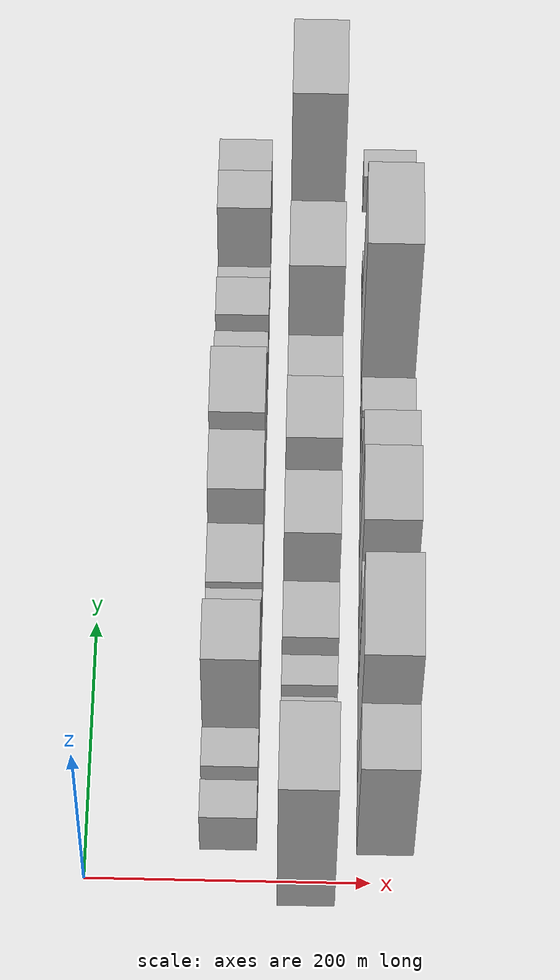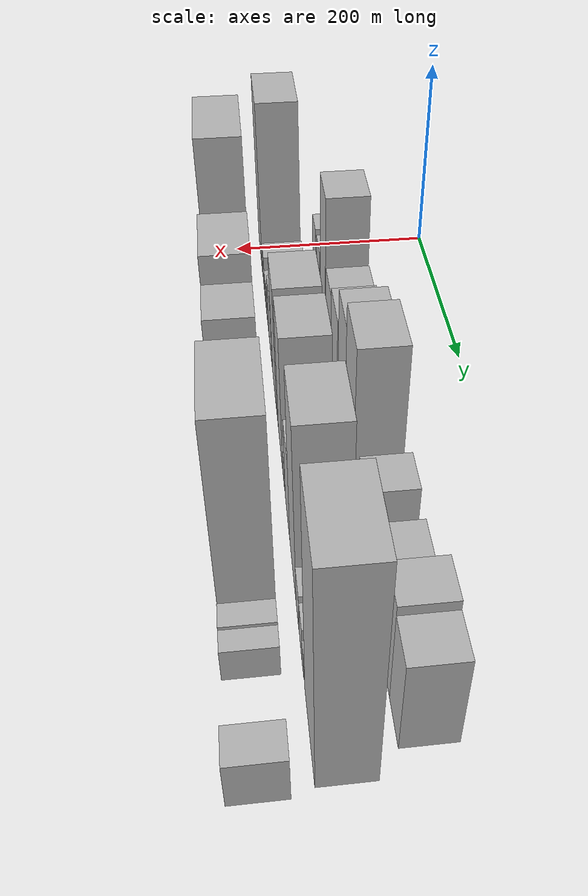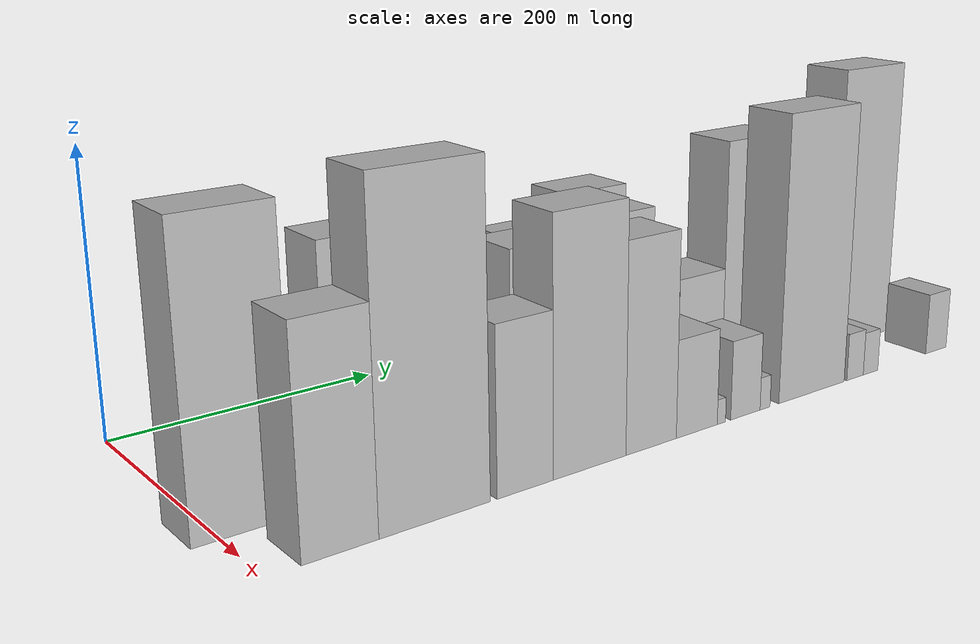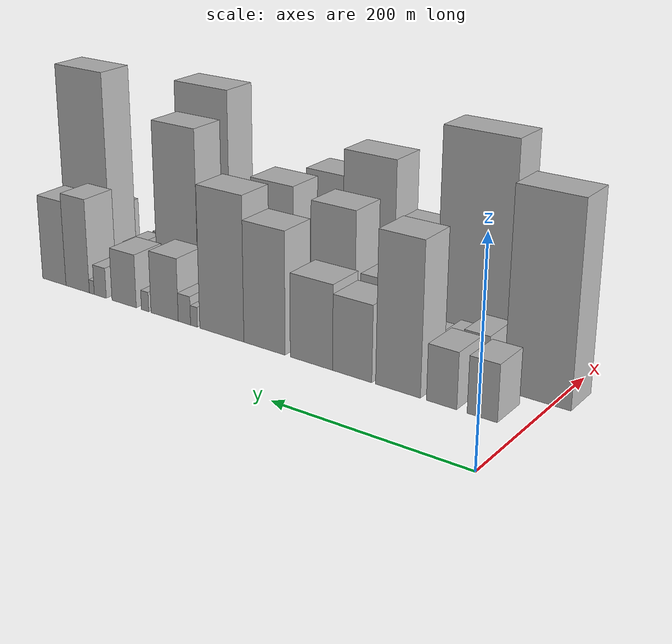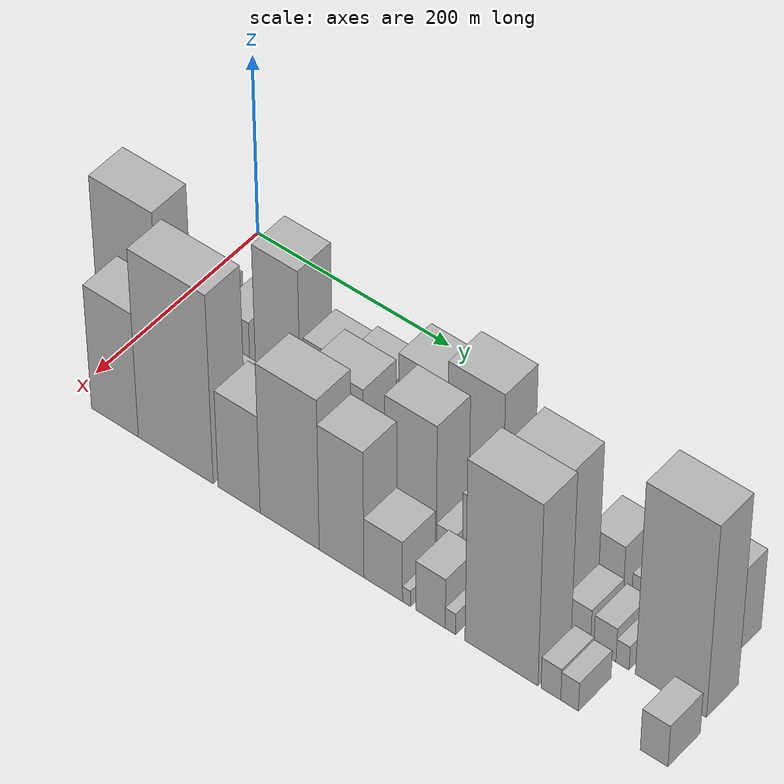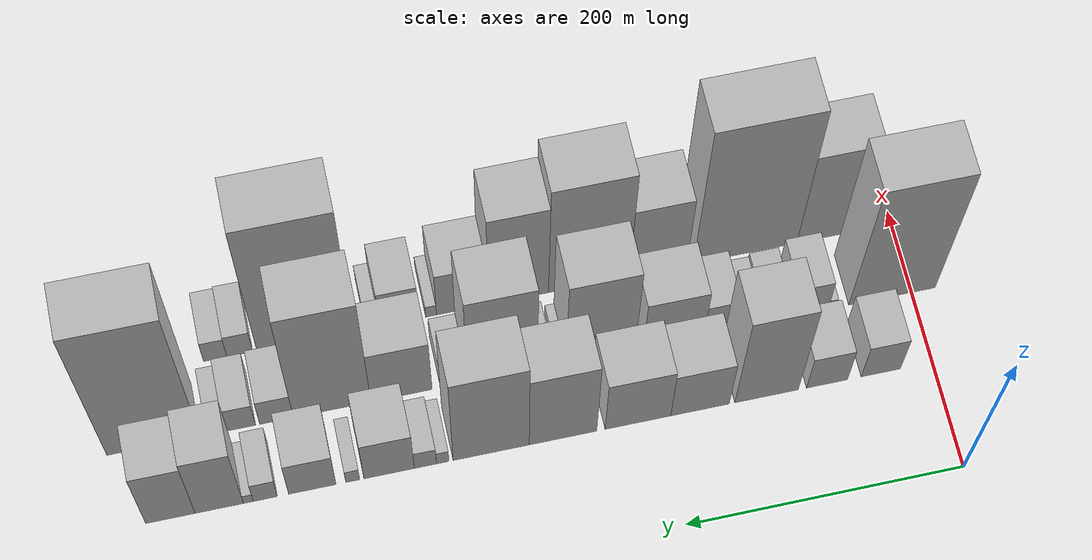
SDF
<sdf version="1.6">
 <world name="default">
  <model name="building_18">
   <static>1</static>
   <pose>100.0000 38.0278 0 0.000000 0.000000 0.000000</pose>
   <link name="link">
    <pose>0 0 27.00 0 0 0</pose>
    <collision name="collision"><geometry><box><size>40.0000 28.8929 54.0000</size></box></geometry></collision>
    <visual name="visual">
     <cast_shadows>0</cast_shadows>
     <geometry><box><size>40.0000 28.8929 54.0000</size></box></geometry>
     <material>
      <script>
       <uri>model://HANNAS_wall/materials/scripts</uri>
       <uri>model://HANNAS_wall/materials/textures</uri>
       <name>vrc/HANNAS_wall</name>
      </script>
     </material>
    </visual>
   </link>
  </model>
  <model name="building_19">
   <static>1</static>
   <pose>100.0000 77.4968 0 0.000000 0.000000 0.000000</pose>
   <link name="link">
    <pose>0 0 27.00 0 0 0</pose>
    <collision name="collision"><geometry><box><size>40.0000 30.0453 54.0000</size></box></geometry></collision>
    <visual name="visual">
     <cast_shadows>0</cast_shadows>
     <geometry><box><size>40.0000 30.0453 54.0000</size></box></geometry>
     <material>
      <script>
       <uri>model://HANNAS_wall/materials/scripts</uri>
       <uri>model://HANNAS_wall/materials/textures</uri>
       <name>vrc/HANNAS_wall</name>
      </script>
     </material>
    </visual>
   </link>
  </model>
  <model name="building_20">
   <static>1</static>
   <pose>100.0000 121.6650 0 0.000000 0.000000 0.000000</pose>
   <link name="link">
    <pose>0 0 73.50 0 0 0</pose>
    <collision name="collision"><geometry><box><size>40.0000 46.2910 147.0000</size></box></geometry></collision>
    <visual name="visual">
     <cast_shadows>0</cast_shadows>
     <geometry><box><size>40.0000 46.2910 147.0000</size></box></geometry>
     <material>
      <script>
       <uri>model://HANNAS_wall/materials/scripts</uri>
       <uri>model://HANNAS_wall/materials/textures</uri>
       <name>vrc/HANNAS_wall</name>
      </script>
     </material>
    </visual>
   </link>
  </model>
  <model name="building_21">
   <static>1</static>
   <pose>100.0000 170.0581 0 0.000000 0.000000 0.000000</pose>
   <link name="link">
    <pose>0 0 37.50 0 0 0</pose>
    <collision name="collision"><geometry><box><size>40.0000 42.4953 75.0000</size></box></geometry></collision>
    <visual name="visual">
     <cast_shadows>0</cast_shadows>
     <geometry><box><size>40.0000 42.4953 75.0000</size></box></geometry>
     <material>
      <script>
       <uri>model://HANNAS_wall/materials/scripts</uri>
       <uri>model://HANNAS_wall/materials/textures</uri>
       <name>vrc/HANNAS_wall</name>
      </script>
     </material>
    </visual>
   </link>
  </model>
  <model name="building_22">
   <static>1</static>
   <pose>100.0000 215.0533 0 0.000000 0.000000 0.000000</pose>
   <link name="link">
    <pose>0 0 42.00 0 0 0</pose>
    <collision name="collision"><geometry><box><size>40.0000 47.4951 84.0000</size></box></geometry></collision>
    <visual name="visual">
     <cast_shadows>0</cast_shadows>
     <geometry><box><size>40.0000 47.4951 84.0000</size></box></geometry>
     <material>
      <script>
       <uri>model://HANNAS_wall/materials/scripts</uri>
       <uri>model://HANNAS_wall/materials/textures</uri>
       <name>vrc/HANNAS_wall</name>
      </script>
     </material>
    </visual>
   </link>
  </model>
  <model name="building_23">
   <static>1</static>
   <pose>100.0000 269.0989 0 0.000000 0.000000 0.000000</pose>
   <link name="link">
    <pose>0 0 61.50 0 0 0</pose>
    <collision name="collision"><geometry><box><size>40.0000 48.5960 123.0000</size></box></geometry></collision>
    <visual name="visual">
     <cast_shadows>0</cast_shadows>
     <geometry><box><size>40.0000 48.5960 123.0000</size></box></geometry>
     <material>
      <script>
       <uri>model://HANNAS_wall/materials/scripts</uri>
       <uri>model://HANNAS_wall/materials/textures</uri>
       <name>vrc/HANNAS_wall</name>
      </script>
     </material>
    </visual>
   </link>
  </model>
  <model name="building_24">
   <static>1</static>
   <pose>100.0000 320.6359 0 0.000000 0.000000 0.000000</pose>
   <link name="link">
    <pose>0 0 73.50 0 0 0</pose>
    <collision name="collision"><geometry><box><size>40.0000 54.4780 147.0000</size></box></geometry></collision>
    <visual name="visual">
     <cast_shadows>0</cast_shadows>
     <geometry><box><size>40.0000 54.4780 147.0000</size></box></geometry>
     <material>
      <script>
       <uri>model://HANNAS_wall/materials/scripts</uri>
       <uri>model://HANNAS_wall/materials/textures</uri>
       <name>vrc/HANNAS_wall</name>
      </script>
     </material>
    </visual>
   </link>
  </model>
  <model name="building_25">
   <static>1</static>
   <pose>100.0000 355.2845 0 0.000000 0.000000 0.000000</pose>
   <link name="link">
    <pose>0 0 10.50 0 0 0</pose>
    <collision name="collision"><geometry><box><size>40.0000 8.8193 21.0000</size></box></geometry></collision>
    <visual name="visual">
     <cast_shadows>0</cast_shadows>
     <geometry><box><size>40.0000 8.8193 21.0000</size></box></geometry>
     <material>
      <script>
       <uri>model://HANNAS_wall/materials/scripts</uri>
       <uri>model://HANNAS_wall/materials/textures</uri>
       <name>vrc/HANNAS_wall</name>
      </script>
     </material>
    </visual>
   </link>
  </model>
  <model name="building_26">
   <static>1</static>
   <pose>100.0000 367.5950 0 0.000000 0.000000 0.000000</pose>
   <link name="link">
    <pose>0 0 15.00 0 0 0</pose>
    <collision name="collision"><geometry><box><size>40.0000 15.8017 30.0000</size></box></geometry></collision>
    <visual name="visual">
     <cast_shadows>0</cast_shadows>
     <geometry><box><size>40.0000 15.8017 30.0000</size></box></geometry>
     <material>
      <script>
       <uri>model://HANNAS_wall/materials/scripts</uri>
       <uri>model://HANNAS_wall/materials/textures</uri>
       <name>vrc/HANNAS_wall</name>
      </script>
     </material>
    </visual>
   </link>
  </model>
  <model name="building_27">
   <static>1</static>
   <pose>100.0000 393.4239 0 0.000000 0.000000 0.000000</pose>
   <link name="link">
    <pose>0 0 33.00 0 0 0</pose>
    <collision name="collision"><geometry><box><size>40.0000 35.8562 66.0000</size></box></geometry></collision>
    <visual name="visual">
     <cast_shadows>0</cast_shadows>
     <geometry><box><size>40.0000 35.8562 66.0000</size></box></geometry>
     <material>
      <script>
       <uri>model://HANNAS_wall/materials/scripts</uri>
       <uri>model://HANNAS_wall/materials/textures</uri>
       <name>vrc/HANNAS_wall</name>
      </script>
     </material>
    </visual>
   </link>
  </model>
  <model name="building_28">
   <static>1</static>
   <pose>100.0000 419.2953 0 0.000000 0.000000 0.000000</pose>
   <link name="link">
    <pose>0 0 10.50 0 0 0</pose>
    <collision name="collision"><geometry><box><size>40.0000 9.8866 21.0000</size></box></geometry></collision>
    <visual name="visual">
     <cast_shadows>0</cast_shadows>
     <geometry><box><size>40.0000 9.8866 21.0000</size></box></geometry>
     <material>
      <script>
       <uri>model://HANNAS_wall/materials/scripts</uri>
       <uri>model://HANNAS_wall/materials/textures</uri>
       <name>vrc/HANNAS_wall</name>
      </script>
     </material>
    </visual>
   </link>
  </model>
  <model name="building_29">
   <static>1</static>
   <pose>100.0000 447.9776 0 0.000000 0.000000 0.000000</pose>
   <link name="link">
    <pose>0 0 28.50 0 0 0</pose>
    <collision name="collision"><geometry><box><size>40.0000 33.4781 57.0000</size></box></geometry></collision>
    <visual name="visual">
     <cast_shadows>0</cast_shadows>
     <geometry><box><size>40.0000 33.4781 57.0000</size></box></geometry>
     <material>
      <script>
       <uri>model://HANNAS_wall/materials/scripts</uri>
       <uri>model://HANNAS_wall/materials/textures</uri>
       <name>vrc/HANNAS_wall</name>
      </script>
     </material>
    </visual>
   </link>
  </model>
  <model name="building_30">
   <static>1</static>
   <pose>100.0000 481.2106 0 0.000000 0.000000 0.000000</pose>
   <link name="link">
    <pose>0 0 16.50 0 0 0</pose>
    <collision name="collision"><geometry><box><size>40.0000 16.9878 33.0000</size></box></geometry></collision>
    <visual name="visual">
     <cast_shadows>0</cast_shadows>
     <geometry><box><size>40.0000 16.9878 33.0000</size></box></geometry>
     <material>
      <script>
       <uri>model://HANNAS_wall/materials/scripts</uri>
       <uri>model://HANNAS_wall/materials/textures</uri>
       <name>vrc/HANNAS_wall</name>
      </script>
     </material>
    </visual>
   </link>
  </model>
  <model name="building_31">
   <static>1</static>
   <pose>100.0000 493.1604 0 0.000000 0.000000 0.000000</pose>
   <link name="link">
    <pose>0 0 7.50 0 0 0</pose>
    <collision name="collision"><geometry><box><size>40.0000 6.9120 15.0000</size></box></geometry></collision>
    <visual name="visual">
     <cast_shadows>0</cast_shadows>
     <geometry><box><size>40.0000 6.9120 15.0000</size></box></geometry>
     <material>
      <script>
       <uri>model://HANNAS_wall/materials/scripts</uri>
       <uri>model://HANNAS_wall/materials/textures</uri>
       <name>vrc/HANNAS_wall</name>
      </script>
     </material>
    </visual>
   </link>
  </model>
  <model name="building_32">
   <static>1</static>
   <pose>100.0000 513.6089 0 0.000000 0.000000 0.000000</pose>
   <link name="link">
    <pose>0 0 51.00 0 0 0</pose>
    <collision name="collision"><geometry><box><size>40.0000 33.9849 102.0000</size></box></geometry></collision>
    <visual name="visual">
     <cast_shadows>0</cast_shadows>
     <geometry><box><size>40.0000 33.9849 102.0000</size></box></geometry>
     <material>
      <script>
       <uri>model://HANNAS_wall/materials/scripts</uri>
       <uri>model://HANNAS_wall/materials/textures</uri>
       <name>vrc/HANNAS_wall</name>
      </script>
     </material>
    </visual>
   </link>
  </model>
  <model name="building_33">
   <static>1</static>
   <pose>100.0000 547.9247 0 0.000000 0.000000 0.000000</pose>
   <link name="link">
    <pose>0 0 46.50 0 0 0</pose>
    <collision name="collision"><geometry><box><size>40.0000 34.6466 93.0000</size></box></geometry></collision>
    <visual name="visual">
     <cast_shadows>0</cast_shadows>
     <geometry><box><size>40.0000 34.6466 93.0000</size></box></geometry>
     <material>
      <script>
       <uri>model://HANNAS_wall/materials/scripts</uri>
       <uri>model://HANNAS_wall/materials/textures</uri>
       <name>vrc/HANNAS_wall</name>
      </script>
     </material>
    </visual>
   </link>
  </model>
  <model name="building_49">
   <static>1</static>
   <pose>155.0000 14.5848 0 0.000000 0.000000 0.000000</pose>
   <link name="link">
    <pose>0 0 96.00 0 0 0</pose>
    <collision name="collision"><geometry><box><size>40.0000 64.3412 192.0000</size></box></geometry></collision>
    <visual name="visual">
     <cast_shadows>0</cast_shadows>
     <geometry><box><size>40.0000 64.3412 192.0000</size></box></geometry>
     <material>
      <script>
       <uri>model://HANNAS_wall/materials/scripts</uri>
       <uri>model://HANNAS_wall/materials/textures</uri>
       <name>vrc/HANNAS_wall</name>
      </script>
     </material>
    </visual>
   </link>
  </model>
  <model name="building_50">
   <static>1</static>
   <pose>155.0000 58.9136 0 0.000000 0.000000 0.000000</pose>
   <link name="link">
    <pose>0 0 7.50 0 0 0</pose>
    <collision name="collision"><geometry><box><size>40.0000 6.3163 15.0000</size></box></geometry></collision>
    <visual name="visual">
     <cast_shadows>0</cast_shadows>
     <geometry><box><size>40.0000 6.3163 15.0000</size></box></geometry>
     <material>
      <script>
       <uri>model://HANNAS_wall/materials/scripts</uri>
       <uri>model://HANNAS_wall/materials/textures</uri>
       <name>vrc/HANNAS_wall</name>
      </script>
     </material>
    </visual>
   </link>
  </model>
  <model name="building_51">
   <static>1</static>
   <pose>155.0000 75.0258 0 0.000000 0.000000 0.000000</pose>
   <link name="link">
    <pose>0 0 24.00 0 0 0</pose>
    <collision name="collision"><geometry><box><size>40.0000 25.9082 48.0000</size></box></geometry></collision>
    <visual name="visual">
     <cast_shadows>0</cast_shadows>
     <geometry><box><size>40.0000 25.9082 48.0000</size></box></geometry>
     <material>
      <script>
       <uri>model://HANNAS_wall/materials/scripts</uri>
       <uri>model://HANNAS_wall/materials/textures</uri>
       <name>vrc/HANNAS_wall</name>
      </script>
     </material>
    </visual>
   </link>
  </model>
  <model name="building_52">
   <static>1</static>
   <pose>155.0000 102.6254 0 0.000000 0.000000 0.000000</pose>
   <link name="link">
    <pose>0 0 18.00 0 0 0</pose>
    <collision name="collision"><geometry><box><size>40.0000 21.2910 36.0000</size></box></geometry></collision>
    <visual name="visual">
     <cast_shadows>0</cast_shadows>
     <geometry><box><size>40.0000 21.2910 36.0000</size></box></geometry>
     <material>
      <script>
       <uri>model://HANNAS_wall/materials/scripts</uri>
       <uri>model://HANNAS_wall/materials/textures</uri>
       <name>vrc/HANNAS_wall</name>
      </script>
     </material>
    </visual>
   </link>
  </model>
  <model name="building_53">
   <static>1</static>
   <pose>155.0000 121.3769 0 0.000000 0.000000 0.000000</pose>
   <link name="link">
    <pose>0 0 15.00 0 0 0</pose>
    <collision name="collision"><geometry><box><size>40.0000 16.2120 30.0000</size></box></geometry></collision>
    <visual name="visual">
     <cast_shadows>0</cast_shadows>
     <geometry><box><size>40.0000 16.2120 30.0000</size></box></geometry>
     <material>
      <script>
       <uri>model://HANNAS_wall/materials/scripts</uri>
       <uri>model://HANNAS_wall/materials/textures</uri>
       <name>vrc/HANNAS_wall</name>
      </script>
     </material>
    </visual>
   </link>
  </model>
  <model name="building_54">
   <static>1</static>
   <pose>155.0000 141.4839 0 0.000000 0.000000 0.000000</pose>
   <link name="link">
    <pose>0 0 24.00 0 0 0</pose>
    <collision name="collision"><geometry><box><size>40.0000 24.0022 48.0000</size></box></geometry></collision>
    <visual name="visual">
     <cast_shadows>0</cast_shadows>
     <geometry><box><size>40.0000 24.0022 48.0000</size></box></geometry>
     <material>
      <script>
       <uri>model://HANNAS_wall/materials/scripts</uri>
       <uri>model://HANNAS_wall/materials/textures</uri>
       <name>vrc/HANNAS_wall</name>
      </script>
     </material>
    </visual>
   </link>
  </model>
  <model name="building_55">
   <static>1</static>
   <pose>155.0000 175.8091 0 0.000000 0.000000 0.000000</pose>
   <link name="link">
    <pose>0 0 37.50 0 0 0</pose>
    <collision name="collision"><geometry><box><size>40.0000 44.6483 75.0000</size></box></geometry></collision>
    <visual name="visual">
     <cast_shadows>0</cast_shadows>
     <geometry><box><size>40.0000 44.6483 75.0000</size></box></geometry>
     <material>
      <script>
       <uri>model://HANNAS_wall/materials/scripts</uri>
       <uri>model://HANNAS_wall/materials/textures</uri>
       <name>vrc/HANNAS_wall</name>
      </script>
     </material>
    </visual>
   </link>
  </model>
  <model name="building_56">
   <static>1</static>
   <pose>155.0000 229.4446 0 0.000000 0.000000 0.000000</pose>
   <link name="link">
    <pose>0 0 67.50 0 0 0</pose>
    <collision name="collision"><geometry><box><size>40.0000 50.6226 135.0000</size></box></geometry></collision>
    <visual name="visual">
     <cast_shadows>0</cast_shadows>
     <geometry><box><size>40.0000 50.6226 135.0000</size></box></geometry>
     <material>
      <script>
       <uri>model://HANNAS_wall/materials/scripts</uri>
       <uri>model://HANNAS_wall/materials/textures</uri>
       <name>vrc/HANNAS_wall</name>
      </script>
     </material>
    </visual>
   </link>
  </model>
  <model name="building_57">
   <static>1</static>
   <pose>155.0000 258.0923 0 0.000000 0.000000 0.000000</pose>
   <link name="link">
    <pose>0 0 7.50 0 0 0</pose>
    <collision name="collision"><geometry><box><size>40.0000 6.6729 15.0000</size></box></geometry></collision>
    <visual name="visual">
     <cast_shadows>0</cast_shadows>
     <geometry><box><size>40.0000 6.6729 15.0000</size></box></geometry>
     <material>
      <script>
       <uri>model://HANNAS_wall/materials/scripts</uri>
       <uri>model://HANNAS_wall/materials/textures</uri>
       <name>vrc/HANNAS_wall</name>
      </script>
     </material>
    </visual>
   </link>
  </model>
  <model name="building_58">
   <static>1</static>
   <pose>155.0000 269.9761 0 0.000000 0.000000 0.000000</pose>
   <link name="link">
    <pose>0 0 12.00 0 0 0</pose>
    <collision name="collision"><geometry><box><size>40.0000 11.0946 24.0000</size></box></geometry></collision>
    <visual name="visual">
     <cast_shadows>0</cast_shadows>
     <geometry><box><size>40.0000 11.0946 24.0000</size></box></geometry>
     <material>
      <script>
       <uri>model://HANNAS_wall/materials/scripts</uri>
       <uri>model://HANNAS_wall/materials/textures</uri>
       <name>vrc/HANNAS_wall</name>
      </script>
     </material>
    </visual>
   </link>
  </model>
  <model name="building_59">
   <static>1</static>
   <pose>155.0000 300.9410 0 0.000000 0.000000 0.000000</pose>
   <link name="link">
    <pose>0 0 72.00 0 0 0</pose>
    <collision name="collision"><geometry><box><size>40.0000 50.8353 144.0000</size></box></geometry></collision>
    <visual name="visual">
     <cast_shadows>0</cast_shadows>
     <geometry><box><size>40.0000 50.8353 144.0000</size></box></geometry>
     <material>
      <script>
       <uri>model://HANNAS_wall/materials/scripts</uri>
       <uri>model://HANNAS_wall/materials/textures</uri>
       <name>vrc/HANNAS_wall</name>
      </script>
     </material>
    </visual>
   </link>
  </model>
  <model name="building_60">
   <static>1</static>
   <pose>155.0000 336.0140 0 0.000000 0.000000 0.000000</pose>
   <link name="link">
    <pose>0 0 16.50 0 0 0</pose>
    <collision name="collision"><geometry><box><size>40.0000 19.3106 33.0000</size></box></geometry></collision>
    <visual name="visual">
     <cast_shadows>0</cast_shadows>
     <geometry><box><size>40.0000 19.3106 33.0000</size></box></geometry>
     <material>
      <script>
       <uri>model://HANNAS_wall/materials/scripts</uri>
       <uri>model://HANNAS_wall/materials/textures</uri>
       <name>vrc/HANNAS_wall</name>
      </script>
     </material>
    </visual>
   </link>
  </model>
  <model name="building_61">
   <static>1</static>
   <pose>155.0000 373.7231 0 0.000000 0.000000 0.000000</pose>
   <link name="link">
    <pose>0 0 43.50 0 0 0</pose>
    <collision name="collision"><geometry><box><size>40.0000 44.1077 87.0000</size></box></geometry></collision>
    <visual name="visual">
     <cast_shadows>0</cast_shadows>
     <geometry><box><size>40.0000 44.1077 87.0000</size></box></geometry>
     <material>
      <script>
       <uri>model://HANNAS_wall/materials/scripts</uri>
       <uri>model://HANNAS_wall/materials/textures</uri>
       <name>vrc/HANNAS_wall</name>
      </script>
     </material>
    </visual>
   </link>
  </model>
  <model name="building_62">
   <static>1</static>
   <pose>155.0000 423.6087 0 0.000000 0.000000 0.000000</pose>
   <link name="link">
    <pose>0 0 90.00 0 0 0</pose>
    <collision name="collision"><geometry><box><size>40.0000 55.6636 180.0000</size></box></geometry></collision>
    <visual name="visual">
     <cast_shadows>0</cast_shadows>
     <geometry><box><size>40.0000 55.6636 180.0000</size></box></geometry>
     <material>
      <script>
       <uri>model://HANNAS_wall/materials/scripts</uri>
       <uri>model://HANNAS_wall/materials/textures</uri>
       <name>vrc/HANNAS_wall</name>
      </script>
     </material>
    </visual>
   </link>
  </model>
  <model name="building_63">
   <static>1</static>
   <pose>155.0000 463.4362 0 0.000000 0.000000 0.000000</pose>
   <link name="link">
    <pose>0 0 21.00 0 0 0</pose>
    <collision name="collision"><geometry><box><size>40.0000 23.9913 42.0000</size></box></geometry></collision>
    <visual name="visual">
     <cast_shadows>0</cast_shadows>
     <geometry><box><size>40.0000 23.9913 42.0000</size></box></geometry>
     <material>
      <script>
       <uri>model://HANNAS_wall/materials/scripts</uri>
       <uri>model://HANNAS_wall/materials/textures</uri>
       <name>vrc/HANNAS_wall</name>
      </script>
     </material>
    </visual>
   </link>
  </model>
  <model name="building_64">
   <static>1</static>
   <pose>155.0000 488.9364 0 0.000000 0.000000 0.000000</pose>
   <link name="link">
    <pose>0 0 19.50 0 0 0</pose>
    <collision name="collision"><geometry><box><size>40.0000 21.0092 39.0000</size></box></geometry></collision>
    <visual name="visual">
     <cast_shadows>0</cast_shadows>
     <geometry><box><size>40.0000 21.0092 39.0000</size></box></geometry>
     <material>
      <script>
       <uri>model://HANNAS_wall/materials/scripts</uri>
       <uri>model://HANNAS_wall/materials/textures</uri>
       <name>vrc/HANNAS_wall</name>
      </script>
     </material>
    </visual>
   </link>
  </model>
  <model name="building_65">
   <static>1</static>
   <pose>155.0000 505.6283 0 0.000000 0.000000 0.000000</pose>
   <link name="link">
    <pose>0 0 13.50 0 0 0</pose>
    <collision name="collision"><geometry><box><size>40.0000 12.3746 27.0000</size></box></geometry></collision>
    <visual name="visual">
     <cast_shadows>0</cast_shadows>
     <geometry><box><size>40.0000 12.3746 27.0000</size></box></geometry>
     <material>
      <script>
       <uri>model://HANNAS_wall/materials/scripts</uri>
       <uri>model://HANNAS_wall/materials/textures</uri>
       <name>vrc/HANNAS_wall</name>
      </script>
     </material>
    </visual>
   </link>
  </model>
  <model name="building_66">
   <static>1</static>
   <pose>155.0000 550.9495 0 0.000000 0.000000 0.000000</pose>
   <link name="link">
    <pose>0 0 109.50 0 0 0</pose>
    <collision name="collision"><geometry><box><size>40.0000 66.2678 219.0000</size></box></geometry></collision>
    <visual name="visual">
     <cast_shadows>0</cast_shadows>
     <geometry><box><size>40.0000 66.2678 219.0000</size></box></geometry>
     <material>
      <script>
       <uri>model://HANNAS_wall/materials/scripts</uri>
       <uri>model://HANNAS_wall/materials/textures</uri>
       <name>vrc/HANNAS_wall</name>
      </script>
     </material>
    </visual>
   </link>
  </model>
  <model name="building_82">
   <static>1</static>
   <pose>210.0000 46.3913 0 0.000000 0.000000 0.000000</pose>
   <link name="link">
    <pose>0 0 70.50 0 0 0</pose>
    <collision name="collision"><geometry><box><size>40.0000 49.0261 141.0000</size></box></geometry></collision>
    <visual name="visual">
     <cast_shadows>0</cast_shadows>
     <geometry><box><size>40.0000 49.0261 141.0000</size></box></geometry>
     <material>
      <script>
       <uri>model://HANNAS_wall/materials/scripts</uri>
       <uri>model://HANNAS_wall/materials/textures</uri>
       <name>vrc/HANNAS_wall</name>
      </script>
     </material>
    </visual>
   </link>
  </model>
  <model name="building_83">
   <static>1</static>
   <pose>210.0000 109.5021 0 0.000000 0.000000 0.000000</pose>
   <link name="link">
    <pose>0 0 106.50 0 0 0</pose>
    <collision name="collision"><geometry><box><size>40.0000 77.1954 213.0000</size></box></geometry></collision>
    <visual name="visual">
     <cast_shadows>0</cast_shadows>
     <geometry><box><size>40.0000 77.1954 213.0000</size></box></geometry>
     <material>
      <script>
       <uri>model://HANNAS_wall/materials/scripts</uri>
       <uri>model://HANNAS_wall/materials/textures</uri>
       <name>vrc/HANNAS_wall</name>
      </script>
     </material>
    </visual>
   </link>
  </model>
  <model name="building_84">
   <static>1</static>
   <pose>210.0000 174.4672 0 0.000000 0.000000 0.000000</pose>
   <link name="link">
    <pose>0 0 55.50 0 0 0</pose>
    <collision name="collision"><geometry><box><size>40.0000 42.7349 111.0000</size></box></geometry></collision>
    <visual name="visual">
     <cast_shadows>0</cast_shadows>
     <geometry><box><size>40.0000 42.7349 111.0000</size></box></geometry>
     <material>
      <script>
       <uri>model://HANNAS_wall/materials/scripts</uri>
       <uri>model://HANNAS_wall/materials/textures</uri>
       <name>vrc/HANNAS_wall</name>
      </script>
     </material>
    </visual>
   </link>
  </model>
  <model name="building_85">
   <static>1</static>
   <pose>210.0000 225.5521 0 0.000000 0.000000 0.000000</pose>
   <link name="link">
    <pose>0 0 85.50 0 0 0</pose>
    <collision name="collision"><geometry><box><size>40.0000 59.4348 171.0000</size></box></geometry></collision>
    <visual name="visual">
     <cast_shadows>0</cast_shadows>
     <geometry><box><size>40.0000 59.4348 171.0000</size></box></geometry>
     <material>
      <script>
       <uri>model://HANNAS_wall/materials/scripts</uri>
       <uri>model://HANNAS_wall/materials/textures</uri>
       <name>vrc/HANNAS_wall</name>
      </script>
     </material>
    </visual>
   </link>
  </model>
  <model name="building_86">
   <static>1</static>
   <pose>210.0000 277.3771 0 0.000000 0.000000 0.000000</pose>
   <link name="link">
    <pose>0 0 72.00 0 0 0</pose>
    <collision name="collision"><geometry><box><size>40.0000 44.2153 144.0000</size></box></geometry></collision>
    <visual name="visual">
     <cast_shadows>0</cast_shadows>
     <geometry><box><size>40.0000 44.2153 144.0000</size></box></geometry>
     <material>
      <script>
       <uri>model://HANNAS_wall/materials/scripts</uri>
       <uri>model://HANNAS_wall/materials/textures</uri>
       <name>vrc/HANNAS_wall</name>
      </script>
     </material>
    </visual>
   </link>
  </model>
  <model name="building_87">
   <static>1</static>
   <pose>210.0000 318.4167 0 0.000000 0.000000 0.000000</pose>
   <link name="link">
    <pose>0 0 34.50 0 0 0</pose>
    <collision name="collision"><geometry><box><size>40.0000 37.8639 69.0000</size></box></geometry></collision>
    <visual name="visual">
     <cast_shadows>0</cast_shadows>
     <geometry><box><size>40.0000 37.8639 69.0000</size></box></geometry>
     <material>
      <script>
       <uri>model://HANNAS_wall/materials/scripts</uri>
       <uri>model://HANNAS_wall/materials/textures</uri>
       <name>vrc/HANNAS_wall</name>
      </script>
     </material>
    </visual>
   </link>
  </model>
  <model name="building_88">
   <static>1</static>
   <pose>210.0000 341.2873 0 0.000000 0.000000 0.000000</pose>
   <link name="link">
    <pose>0 0 9.00 0 0 0</pose>
    <collision name="collision"><geometry><box><size>40.0000 7.8773 18.0000</size></box></geometry></collision>
    <visual name="visual">
     <cast_shadows>0</cast_shadows>
     <geometry><box><size>40.0000 7.8773 18.0000</size></box></geometry>
     <material>
      <script>
       <uri>model://HANNAS_wall/materials/scripts</uri>
       <uri>model://HANNAS_wall/materials/textures</uri>
       <name>vrc/HANNAS_wall</name>
      </script>
     </material>
    </visual>
   </link>
  </model>
  <model name="building_89">
   <static>1</static>
   <pose>210.0000 364.6481 0 0.000000 0.000000 0.000000</pose>
   <link name="link">
    <pose>0 0 28.50 0 0 0</pose>
    <collision name="collision"><geometry><box><size>40.0000 28.8443 57.0000</size></box></geometry></collision>
    <visual name="visual">
     <cast_shadows>0</cast_shadows>
     <geometry><box><size>40.0000 28.8443 57.0000</size></box></geometry>
     <material>
      <script>
       <uri>model://HANNAS_wall/materials/scripts</uri>
       <uri>model://HANNAS_wall/materials/textures</uri>
       <name>vrc/HANNAS_wall</name>
      </script>
     </material>
    </visual>
   </link>
  </model>
  <model name="building_90">
   <static>1</static>
   <pose>210.0000 384.0860 0 0.000000 0.000000 0.000000</pose>
   <link name="link">
    <pose>0 0 12.00 0 0 0</pose>
    <collision name="collision"><geometry><box><size>40.0000 10.0315 24.0000</size></box></geometry></collision>
    <visual name="visual">
     <cast_shadows>0</cast_shadows>
     <geometry><box><size>40.0000 10.0315 24.0000</size></box></geometry>
     <material>
      <script>
       <uri>model://HANNAS_wall/materials/scripts</uri>
       <uri>model://HANNAS_wall/materials/textures</uri>
       <name>vrc/HANNAS_wall</name>
      </script>
     </material>
    </visual>
   </link>
  </model>
  <model name="building_91">
   <static>1</static>
   <pose>210.0000 432.9829 0 0.000000 0.000000 0.000000</pose>
   <link name="link">
    <pose>0 0 103.50 0 0 0</pose>
    <collision name="collision"><geometry><box><size>40.0000 69.7623 207.0000</size></box></geometry></collision>
    <visual name="visual">
     <cast_shadows>0</cast_shadows>
     <geometry><box><size>40.0000 69.7623 207.0000</size></box></geometry>
     <material>
      <script>
       <uri>model://HANNAS_wall/materials/scripts</uri>
       <uri>model://HANNAS_wall/materials/textures</uri>
       <name>vrc/HANNAS_wall</name>
      </script>
     </material>
    </visual>
   </link>
  </model>
  <model name="building_92">
   <static>1</static>
   <pose>210.0000 480.1546 0 0.000000 0.000000 0.000000</pose>
   <link name="link">
    <pose>0 0 18.00 0 0 0</pose>
    <collision name="collision"><geometry><box><size>40.0000 18.5811 36.0000</size></box></geometry></collision>
    <visual name="visual">
     <cast_shadows>0</cast_shadows>
     <geometry><box><size>40.0000 18.5811 36.0000</size></box></geometry>
     <material>
      <script>
       <uri>model://HANNAS_wall/materials/scripts</uri>
       <uri>model://HANNAS_wall/materials/textures</uri>
       <name>vrc/HANNAS_wall</name>
      </script>
     </material>
    </visual>
   </link>
  </model>
  <model name="building_93">
   <static>1</static>
   <pose>210.0000 497.8026 0 0.000000 0.000000 0.000000</pose>
   <link name="link">
    <pose>0 0 16.50 0 0 0</pose>
    <collision name="collision"><geometry><box><size>40.0000 16.7148 33.0000</size></box></geometry></collision>
    <visual name="visual">
     <cast_shadows>0</cast_shadows>
     <geometry><box><size>40.0000 16.7148 33.0000</size></box></geometry>
     <material>
      <script>
       <uri>model://HANNAS_wall/materials/scripts</uri>
       <uri>model://HANNAS_wall/materials/textures</uri>
       <name>vrc/HANNAS_wall</name>
      </script>
     </material>
    </visual>
   </link>
  </model>
  <model name="building_94">
   <static>1</static>
   <pose>210.0000 576.6157 0 0.000000 0.000000 0.000000</pose>
   <link name="link">
    <pose>0 0 24.00 0 0 0</pose>
    <collision name="collision"><geometry><box><size>40.0000 25.6371 48.0000</size></box></geometry></collision>
    <visual name="visual">
     <cast_shadows>0</cast_shadows>
     <geometry><box><size>40.0000 25.6371 48.0000</size></box></geometry>
     <material>
      <script>
       <uri>model://HANNAS_wall/materials/scripts</uri>
       <uri>model://HANNAS_wall/materials/textures</uri>
       <name>vrc/HANNAS_wall</name>
      </script>
     </material>
    </visual>
   </link>
  </model>
 </world>
</sdf>
